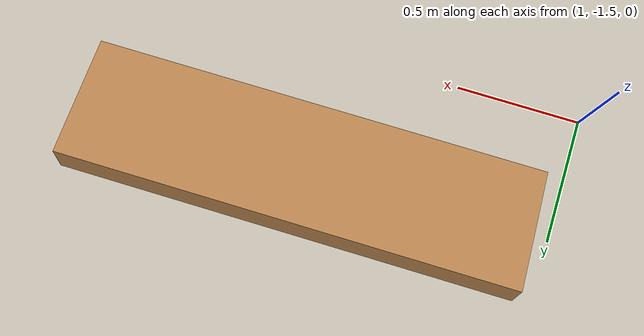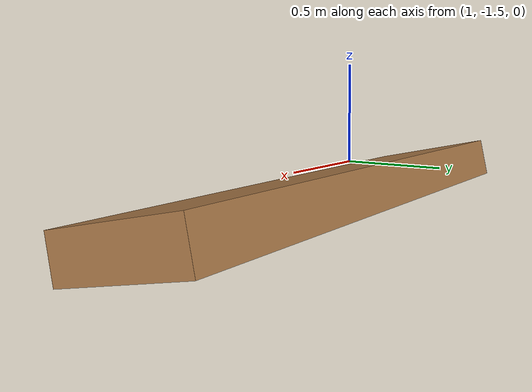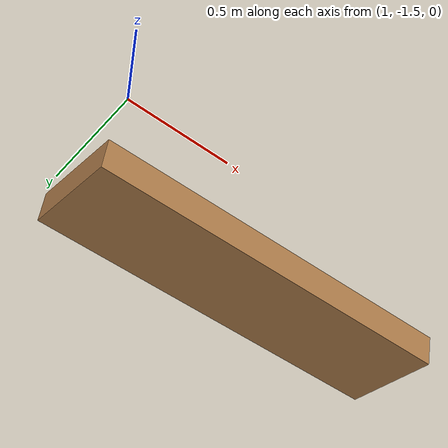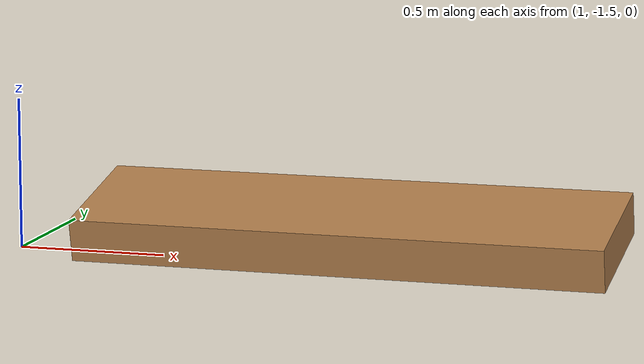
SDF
<?xml version="1.0" ?>
<sdf version="1.6">
        <model name="terrain-highslope">
            <static>true</static>
            <pose>2 -1 0.028 1.7821 0 0</pose>
            <link name="box">
                <collision name="box_collision">
                    <pose frame="">0 0 0 0 0 0</pose>
                    <geometry>
                        <box>
                            <size>1.85 0.15 0.50</size>
                        </box>
                    </geometry>
                    <surface>
                        <friction>
                            <ode>
                                <mu>1</mu>
                            </ode>
                        </friction>
                    </surface>
                </collision>
                <visual name="box_visual">
                    <pose frame="">0 0 0 0 0 0</pose>
                    <geometry>
                        <box>
                            <size>1.85 0.15 0.50</size>
                        </box>
                    </geometry>
                    <material>
                        <script>
                            <uri>file://media/materials/scripts/gazebo.material</uri>
                            <name>Gazebo/Wood</name>
                        </script>
                        <ambient>1 1 1 1</ambient>
                    </material>
                </visual>
            </link>
        </model>
</sdf>
